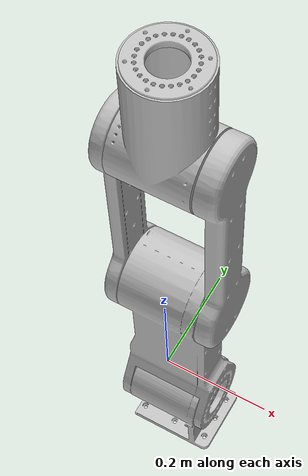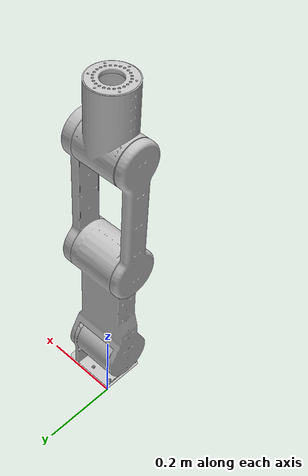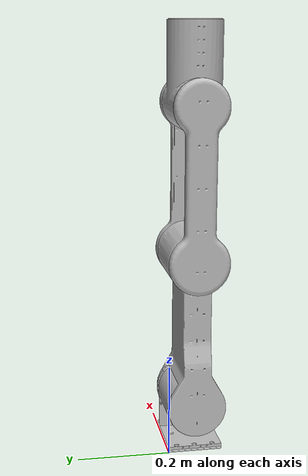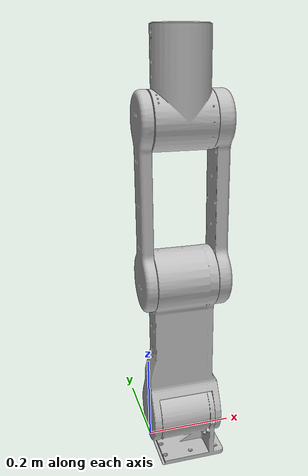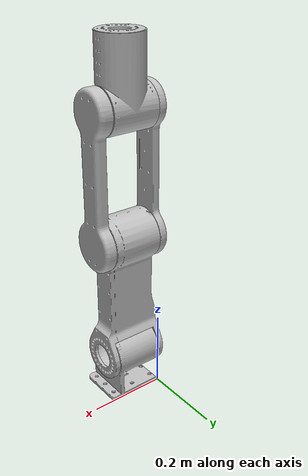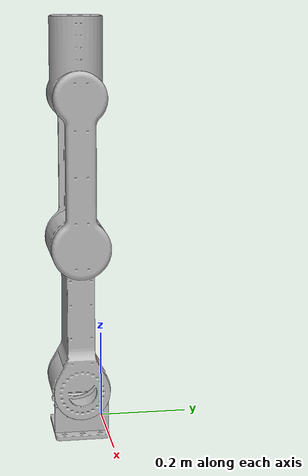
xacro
<?xml version="1.0"?>
<robot xmlns:xacro="http://www.ros.org/wiki/xacro" name="fold_elevator">

  <xacro:include filename="$(find fold_elevator_description)/urdf/fold_elevator.urdf.xacro" />
  <xacro:include filename="$(find fold_elevator_configure)/config/fold_elevator.ros2_control.xacro" />

  <link name="world"/>

  <xacro:fold_elevator name="fold_elevator" parent="world">
    <origin xyz="0.0 0.0 0.0" rpy="0 0 0"/>
  </xacro:fold_elevator>

  <xacro:fold_elevator_ros2_control name="" sim="true" can_interface="can2" desired_config_update_rate="1000" />

</robot>

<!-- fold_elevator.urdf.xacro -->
<robot xmlns:xacro="http://www.ros.org/wiki/xacro">
  <xacro:macro name="fold_elevator" params="name parent *origin">

    <link name="${name}_base_link">
      <inertial>
        <origin
          xyz="0.0891357515039702 -0.0600105188224723 0.0319343260117339"
          rpy="0 0 0" />
        <mass
          value="2.26283180383215" />
        <inertia
          ixx="0.00682098629888102"
          ixy="1.35383918129792E-06"
          ixz="-0.00120985513326378"
          iyy="0.00688180551407474"
          iyz="-3.55019811213944E-06"
          izz="0.00613738161557863" />
      </inertial>

      <visual>
        <origin xyz="0 0 0" rpy="0 0 0" />
        <geometry>
          <mesh filename="package://fold_elevator_description/meshes/visual/base_link.STL" />
        </geometry>
        <material name="">
          <color rgba="0.752941176470588 0.752941176470588 0.752941176470588 1" />
        </material>
      </visual>

      <collision>
        <origin xyz="0 0 0" rpy="0 0 0" />
        <geometry>
          <mesh filename="package://fold_elevator_description/meshes/collision/base_link.STL" />
        </geometry>
      </collision>
    </link>

    <joint name="${name}_base_joint" type="fixed">
      <parent link="${parent}"/>
      <child link="${name}_base_link"/>
      <xacro:insert_block name="origin" />
      <axis xyz="0 0 1"/>
    </joint>

    <link name="link1">
      <inertial>
        <origin
          xyz="0.150849204106985 -9.1876604810387E-06 -0.0581278906888667"
          rpy="0 0 0" />
        <mass
          value="2.976039924942" />
        <inertia
          ixx="0.00314898163070912"
          ixy="1.59802506736583E-06"
          ixz="-0.00103470671766679"
          iyy="0.0456464411263901"
          iyz="-2.66237977525087E-06"
          izz="0.0473958313229646" />
      </inertial>

      <visual>
        <origin xyz="0 0 0" rpy="0 0 0" />
        <geometry>
          <mesh filename="package://fold_elevator_description/meshes/visual/link1.STL" />
        </geometry>
        <material name="">
          <color rgba="0.752941176470588 0.752941176470588 0.752941176470588 1" />
        </material>
      </visual>

      <collision>
        <origin xyz="0 0 0" rpy="0 0 0" />
        <geometry>
          <mesh filename="package://fold_elevator_description/meshes/collision/link1.STL" />
        </geometry>
      </collision>
    </link>

    <joint name="joint1" type="revolute">
      <origin xyz="0.054623 -0.06 0.105" rpy="1.57079632679 -1.57079632679 -1.57079632679" />
      <parent link="${name}_base_link" />
      <child link="link1" />
      <axis xyz="0 0 1" />
      <limit
        lower="0"
        upper="1.1344640138"
        effort="1"
        velocity="0.1745329252" />
    </joint>

    <link name="link2">
      <inertial>
        <origin
          xyz="0.161224779586109 8.26876809245647E-06 -0.00983121345856443"
          rpy="0 0 0" />
        <mass
          value="0.393142489079521" />
        <inertia
          ixx="0.000385544833741543"
          ixy="-2.63936177834169E-09"
          ixz="-3.85228060816533E-05"
          iyy="0.00680577641372018"
          iyz="-1.06477904379006E-11"
          izz="0.00713642342666465" />
      </inertial>

      <visual>
        <origin xyz="0 0 0" rpy="0 0 0" />
        <geometry>
          <mesh filename="package://fold_elevator_description/meshes/visual/link2.STL" />
        </geometry>
        <material name="">
          <color rgba="0.752941176470588 0.752941176470588 0.752941176470588 1" />
        </material>
      </visual>

      <collision>
        <origin xyz="0 0 0" rpy="0 0 0" />
        <geometry>
          <mesh filename="package://fold_elevator_description/meshes/collision/link2.STL" />
        </geometry>
      </collision>
    </link>

    <joint name="joint2" type="revolute">
      <origin xyz="0.325 0 0" rpy="0 0 0" />
      <parent link="link1" />
      <child link="link2" />
      <axis xyz="0 0 1" />
      <limit
        lower="-2.7925268032"
        upper="2.7925268032"
        effort="1"
        velocity="0.2617993878" />
    </joint>

    <link name="link3">
      <inertial>
        <origin
          xyz="9.75482671417005E-07 -0.053417702239025 -0.00442438411320098"
          rpy="0 0 0" />
        <mass
          value="0.236077153637359" />
        <inertia
          ixx="0.00154414234187567"
          ixy="-3.0605171029781E-07"
          ixz="-7.56364769224484E-08"
          iyy="0.000440001934114007"
          iyz="-3.94550247420016E-05"
          izz="0.00123808020961714" />
      </inertial>

      <visual>
        <origin xyz="0 0 0" rpy="0 0 0" />
        <geometry>
          <mesh filename="package://fold_elevator_description/meshes/visual/link3.STL" />
        </geometry>
        <material name="">
          <color rgba="0.752941176470588 0.752941176470588 0.752941176470588 1" />
        </material>
      </visual>

      <collision>
        <origin xyz="0 0 0" rpy="0 0 0" />
        <geometry>
          <mesh filename="package://fold_elevator_description/meshes/collision/link3.STL" />
        </geometry>
      </collision>
    </link>

    <joint name="joint3" type="revolute">
      <origin xyz="0.325 0 0" rpy="0 0 1.57079632679" />
      <parent link="link2" />
      <child link="link3" />
      <axis xyz="0 0 1" />
      <limit
        lower="-2.35619449"
        upper="2.35619449"
        effort="1"
        velocity="0.3490658504" />
    </joint>

    <link name="link4">
      <inertial>
        <origin
          xyz="-7.51764107198181E-05 -6.84269468244347E-06 -0.00630278043796051"
          rpy="0 0 0" />
        <mass
          value="0.224129183175339" />
        <inertia
          ixx="0.000213048176718895"
          ixy="-8.46287520238891E-08"
          ixz="-1.96952804294215E-07"
          iyy="0.000213730397858472"
          iyz="-2.37665947796012E-08"
          izz="0.000419496066447268" />
      </inertial>

      <visual>
        <origin xyz="0 0 0" rpy="0 0 0" />
        <geometry>
          <mesh filename="package://fold_elevator_description/meshes/visual/link4.STL" />
        </geometry>
        <material name="">
          <color rgba="0.752941176470588 0.752941176470588 0.752941176470588 1" />
        </material>
      </visual>

      <collision>
        <origin xyz="0 0 0" rpy="0 0 0" />
        <geometry>
          <mesh filename="package://fold_elevator_description/meshes/collision/link4.STL" />
        </geometry>
      </collision>
    </link>

    <joint name="joint4" type="revolute">
      <origin xyz="0 -0.172 -0.0070273" rpy="1.57079632679 1.57079632679 0" />
      <parent link="link3" />
      <child link="link4" />
      <axis xyz="0 0 1" />
      <limit
        lower="-3.4906585"
        upper="3.4906585"
        effort="1"
        velocity="1.5707963268" />
    </joint>

  </xacro:macro>
</robot>
